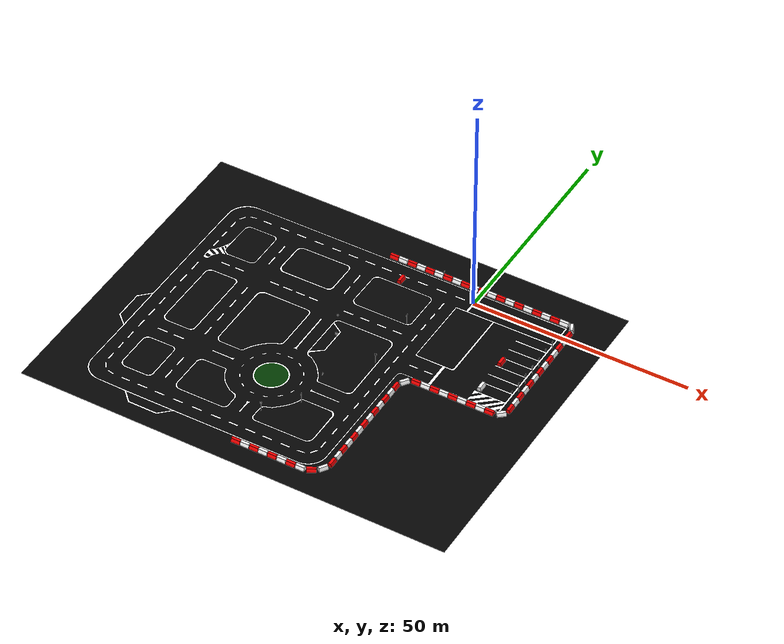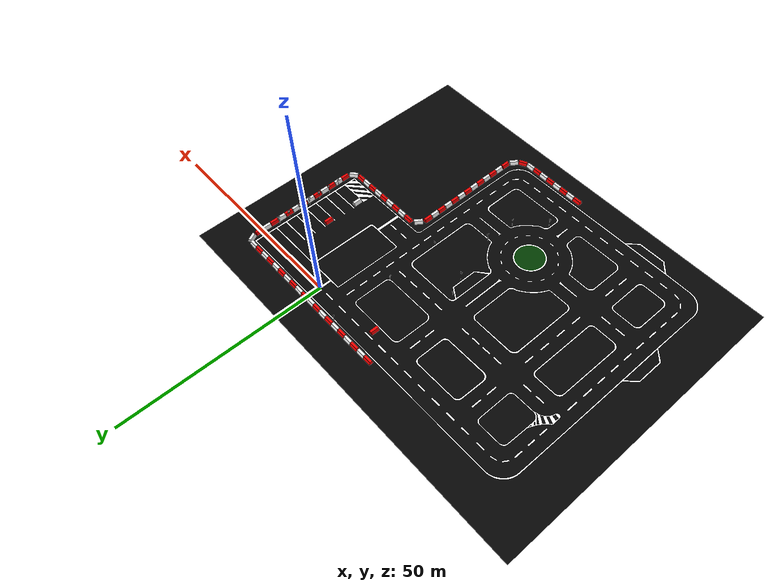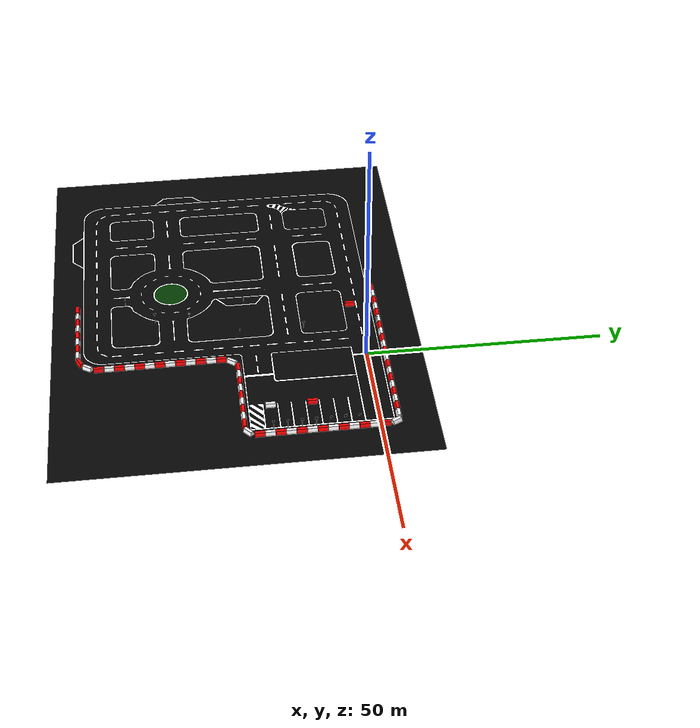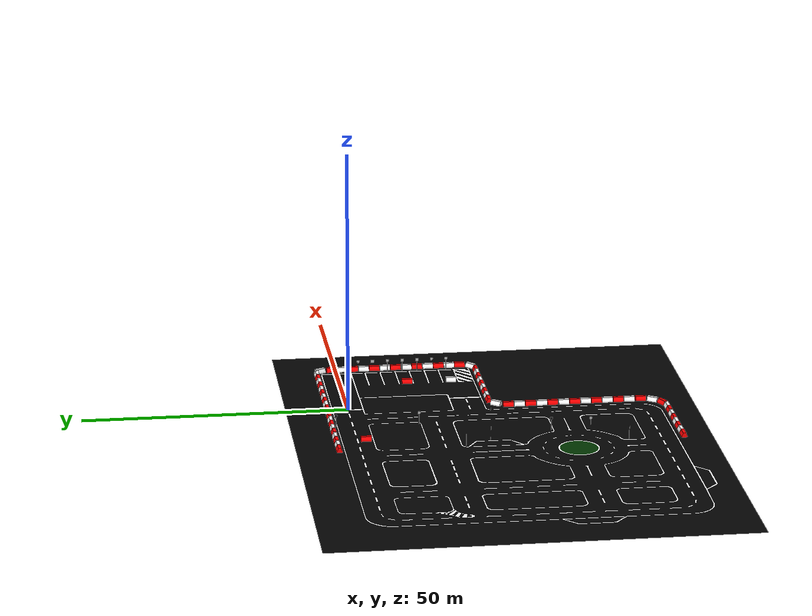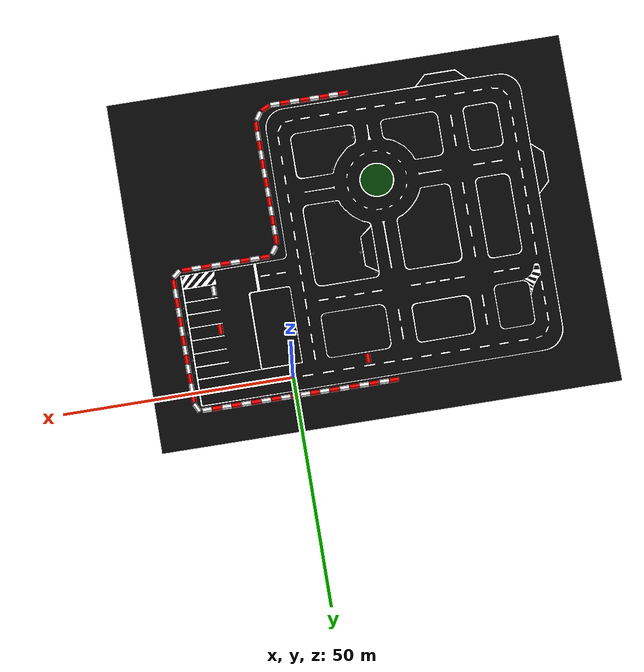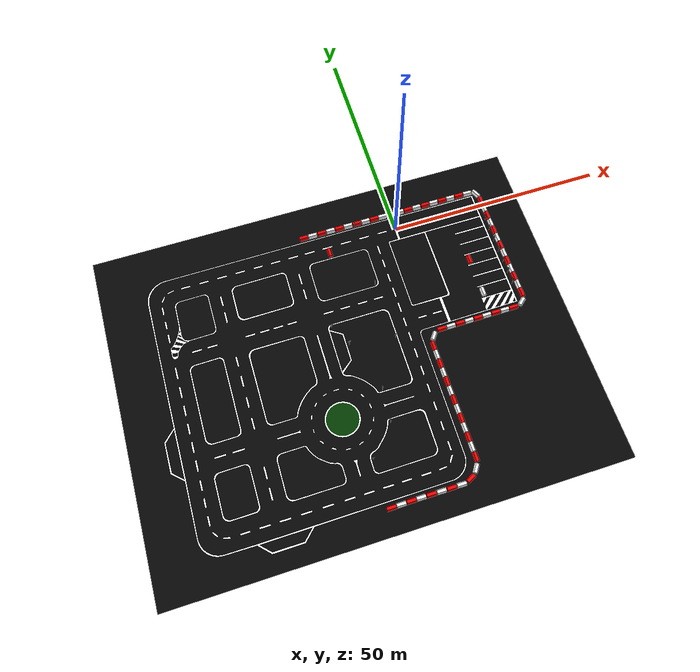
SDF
<sdf version="1.10">
 <world name="default">
  <model name="TeknofestHaritav2">
   <static>true</static>
   <link name="link">
    <collision name="collision">
     <geometry>
      <mesh><uri>package://simulation_2025/models/teknofest_zemin/meshes/teknofestharitav2.dae</uri></mesh>
     </geometry>
    </collision>
    <visual name="visual">
     <geometry>
      <mesh><uri>package://simulation_2025/models/teknofest_zemin/meshes/teknofestharitav2.dae</uri></mesh>
     </geometry>
    </visual>
    <inertial>
     <mass>1</mass>
     <inertia><ixx>1</ixx><ixy>0</ixy><ixz>0</ixz><iyy>1</iyy><iyz>0</iyz><izz>1</izz></inertia>
    </inertial>
   </link>
  </model>
  <include>
   <uri>package://simulation_2025/models/durak_levha</uri>
   <name>DurakLevha_1</name>
   <pose>-18.789400000000001 -24.401399999999999 0 0 0 -1.4925999999999997</pose>
  </include>
  <include>
   <uri>package://simulation_2025/models/donel_kavsak_levha</uri>
   <name>DonelKavsak</name>
   <pose>-21.371700000000001 -49.805399999999999 0 0 0 -1.6406000000000001</pose>
  </include>
  <include>
   <uri>package://simulation_2025/models/donel_kavsak_levha</uri>
   <name>DonelKavsak_2</name>
   <pose>-14.947100000000001 -36.276699999999998 0 0 0 -0.017246000000000001</pose>
  </include>
  <include>
   <uri>package://simulation_2025/models/kirmizi_bariyer</uri>
   <name>KirmiziBariyer</name>
   <pose>0.10786999999999999 3.4992700000000001 0 0 0 -1.5717000000000001</pose>
  </include>
  <include>
   <uri>package://simulation_2025/models/beyaz_bariyer</uri>
   <name>BeyazBariyer</name>
   <pose>-2 3.5049600000000001 0 0 0 -1.5805400000000001</pose>
  </include>
  <include>
   <uri>package://simulation_2025/models/kirmizi_bariyer</uri>
   <name>KirmiziBariyer_1</name>
   <pose>-4.0795599999999999 3.5112199999999998 0 0 0 -1.5717000000000001</pose>
  </include>
  <include>
   <uri>package://simulation_2025/models/beyaz_bariyer</uri>
   <name>BeyazBariyer_1</name>
   <pose>-6.1809900000000004 3.5314399999999999 0 0 0 -1.5805400000000001</pose>
  </include>
  <include>
   <uri>package://simulation_2025/models/kirmizi_bariyer</uri>
   <name>KirmiziBariyer_1_1</name>
   <pose>-8.3466199999999997 3.5272800000000002 0 0 0 -1.5717000000000001</pose>
  </include>
  <include>
   <uri>package://simulation_2025/models/beyaz_bariyer</uri>
   <name>BeyazBariyer_1_1</name>
   <pose>-10.517799999999999 3.5630500000000001 0 0 0 -1.5805400000000001</pose>
  </include>
  <include>
   <uri>package://simulation_2025/models/kirmizi_bariyer</uri>
   <name>KirmiziBariyer_1_1_1</name>
   <pose>-12.643800000000001 3.5325600000000001 0 0 0 -1.5717000000000001</pose>
  </include>
  <include>
   <uri>package://simulation_2025/models/beyaz_bariyer</uri>
   <name>BeyazBariyer_1_1_1</name>
   <pose>-14.7996 3.5680100000000001 0 0 0 -1.5805400000000001</pose>
  </include>
  <include>
   <uri>package://simulation_2025/models/kirmizi_bariyer</uri>
   <name>KirmiziBariyer_1_1_1_1</name>
   <pose>-16.9375 3.56867 0 0 0 -1.5717000000000001</pose>
  </include>
  <include>
   <uri>package://simulation_2025/models/beyaz_bariyer</uri>
   <name>BeyazBariyer_1_1_1_1</name>
   <pose>-19.1816 3.5583399999999998 0 0 0 -1.5805400000000001</pose>
  </include>
  <include>
   <uri>package://simulation_2025/models/kirmizi_bariyer</uri>
   <name>KirmiziBariyer_1_1_1_1_1</name>
   <pose>-21.318999999999999 3.5587900000000001 0 0 0 -1.5717000000000001</pose>
  </include>
  <include>
   <uri>package://simulation_2025/models/kirmizi_bariyer</uri>
   <name>KirmiziBariyer_1_1_1_1_1_1_1_1_1_1_1_2_1_2_1_1_1_1</name>
   <pose>-20.813199999999998 -60.499400000000001 0 0 0 -1.5717000000000001</pose>
  </include>
  <include>
   <uri>package://simulation_2025/models/beyaz_bariyer</uri>
   <name>BeyazBariyer_1_1_1_1_1_1_1_1_1_2_2_1_1_1_1_1</name>
   <pose>-18.6935 -60.4634 0 0 0 -1.5805400000000001</pose>
  </include>
  <include>
   <uri>package://simulation_2025/models/kirmizi_bariyer</uri>
   <name>KirmiziBariyer_1_1_1_1_1_1_1_1_1_1_1_2_1_2_1_1_1_1_1</name>
   <pose>-16.568300000000001 -60.430900000000001 0 0 0 -1.5717000000000001</pose>
  </include>
  <include>
   <uri>package://simulation_2025/models/beyaz_bariyer</uri>
   <name>BeyazBariyer_1_1_1_1_1_1_1_1_1_2_2_1_1_1_1_1_1</name>
   <pose>-14.4695 -60.415900000000001 0 0 0 -1.5805400000000001</pose>
  </include>
  <include>
   <uri>package://simulation_2025/models/kirmizi_bariyer</uri>
   <name>KirmiziBariyer_1_1_1_1_1_1_1_1_1_1_1_2_1_2_1_1_1_1_1_1</name>
   <pose>-12.3141 -60.436900000000001 0 0 0 -1.5717000000000001</pose>
  </include>
  <include>
   <uri>package://simulation_2025/models/beyaz_bariyer</uri>
   <name>BeyazBariyer_1_1_1_1_1_1_1_1_1_2_2_1_1_1_1_1_1_1</name>
   <pose>-10.1252 -60.443800000000003 0 0 0 -1.5805400000000001</pose>
  </include>
  <include>
   <uri>package://simulation_2025/models/kirmizi_bariyer</uri>
   <name>KirmiziBariyer_1_1_1_1_1_1_1_1_1_1_1_2_1_2_1_1_1_1_1_1_1</name>
   <pose>-7.9500099999999998 -60.470700000000001 0 0 0 -1.5717000000000001</pose>
  </include>
  <include>
   <uri>package://simulation_2025/models/beyaz_bariyer</uri>
   <name>BeyazBariyer_1_1_1_1_1_1_1_1_1_2_2_1_1_1_1_1_1_1_1</name>
   <pose>-5.7749899999999998 -60.434600000000003 0 0 0 -1.5805400000000001</pose>
  </include>
  <include>
   <uri>package://simulation_2025/models/kirmizi_bariyer</uri>
   <name>KirmiziBariyer_1_1_1_1_1_1_1_1_1_1_1_2_1_2_1_1_1_1_1_1_1_1</name>
   <pose>-3.3742100000000002 -59.874499999999998 0 0 0 -1.1214</pose>
  </include>
  <include>
   <uri>package://simulation_2025/models/beyaz_bariyer</uri>
   <name>BeyazBariyer_1_1_1_1_1_1_1_1_1_2_2_1_1_1_1_1_1_1_1_1</name>
   <pose>-1.4704999999999999 -58.170999999999999 0 0 0 -0.59510800000000008</pose>
  </include>
  <include>
   <uri>package://simulation_2025/models/kirmizi_bariyer</uri>
   <name>KirmiziBariyer_1_1_1_1_1_1_1_1_1_1_1_2_1_2_1_1_1_1_1_1_1_1_1</name>
   <pose>-1.45119 -55.717100000000002 0 0 0 3.13653</pose>
  </include>
  <include>
   <uri>package://simulation_2025/models/beyaz_bariyer</uri>
   <name>BeyazBariyer_1_1_1_1_1_1_1_1_1_2_2_1_1_1_1_1_1_1_1_1_1</name>
   <pose>-1.4720200000000001 -53.499699999999997 0 0 0 -3.1318600000000001</pose>
  </include>
  <include>
   <uri>package://simulation_2025/models/kirmizi_bariyer</uri>
   <name>KirmiziBariyer_1_1_1_1_1_1_1_1_1_1_1_2_1_2_1_1_1_1_1_1_1_1_1_1</name>
   <pose>-1.4819199999999999 -51.407899999999998 0 0 0 3.13653</pose>
  </include>
  <include>
   <uri>package://simulation_2025/models/beyaz_bariyer</uri>
   <name>BeyazBariyer_1_1_1_1_1_1_1_1_1_2_2_1_1_1_1_1_1_1_1_1_1_1</name>
   <pose>-1.4877499999999999 -49.296799999999998 0 0 0 -3.1318600000000001</pose>
  </include>
  <include>
   <uri>package://simulation_2025/models/kirmizi_bariyer</uri>
   <name>KirmiziBariyer_1_1_1_1_1_1_1_1_1_1_1_2_1_2_1_1_1_1_1_1_1_1_1_1_1</name>
   <pose>-1.48664 -47.209600000000002 0 0 0 3.13653</pose>
  </include>
  <include>
   <uri>package://simulation_2025/models/beyaz_bariyer</uri>
   <name>BeyazBariyer_1_1_1_1_1_1_1_1_1_2_2_1_1_1_1_1_1_1_1_1_1_1_1</name>
   <pose>-1.5121500000000001 -45.147799999999997 0 0 0 -3.1318600000000001</pose>
  </include>
  <include>
   <uri>package://simulation_2025/models/kirmizi_bariyer</uri>
   <name>KirmiziBariyer_1_1_1_1_1_1_1_1_1_1_1_2_1_2_1_1_1_1_1_1_1_1_1_1_1_1</name>
   <pose>-1.5617399999999999 -43.053400000000003 0 0 0 3.13653</pose>
  </include>
  <include>
   <uri>package://simulation_2025/models/beyaz_bariyer</uri>
   <name>BeyazBariyer_1_1_1_1_1_1_1_1_1_2_2_1_1_1_1_1_1_1_1_1_1_1_1_1</name>
   <pose>-1.58304 -40.938499999999998 0 0 0 -3.1318600000000001</pose>
  </include>
  <include>
   <uri>package://simulation_2025/models/kirmizi_bariyer</uri>
   <name>KirmiziBariyer_1_1_1_1_1_1_1_1_1_1_1_2_1_2_1_1_1_1_1_1_1_1_1_1_1_1_1</name>
   <pose>-1.5887899999999999 -38.805 0 0 0 3.13653</pose>
  </include>
  <include>
   <uri>package://simulation_2025/models/beyaz_bariyer</uri>
   <name>BeyazBariyer_1_1_1_1_1_1_1_1_1_2_2_1_1_1_1_1_1_1_1_1_1_1_1_1_1</name>
   <pose>-1.61084 -36.713500000000003 0 0 0 -3.1318600000000001</pose>
  </include>
  <include>
   <uri>package://simulation_2025/models/kirmizi_bariyer</uri>
   <name>KirmiziBariyer_1_1_1_1_1_1_1_1_1_1_1_2_1_2_1_1_1_1_1_1_1_1_1_1_1_1_1_1</name>
   <pose>-1.6187400000000001 -34.591900000000003 0 0 0 3.13653</pose>
  </include>
  <include>
   <uri>package://simulation_2025/models/beyaz_bariyer</uri>
   <name>BeyazBariyer_1_1_1_1_1_1_1_1_1_2_2_1_1_1_1_1_1_1_1_1_1_1_1_1_1_1</name>
   <pose>-1.63273 -32.450699999999998 0 0 0 -3.1318600000000001</pose>
  </include>
  <include>
   <uri>package://simulation_2025/models/kirmizi_bariyer</uri>
   <name>KirmiziBariyer_1_1_1_1_1_1_1_1_1_1_1_2_1_2_1_1_1_1_1_1_1_1_1_1_1_1_1_1_1</name>
   <pose>-1.6433 -30.3216 0 0 0 3.13653</pose>
  </include>
  <include>
   <uri>package://simulation_2025/models/beyaz_bariyer</uri>
   <name>BeyazBariyer_1_1_1_1_1_1_1_1_1_2_2_1_1_1_1_1_1_1_1_1_1_1_1_1_1_1_1</name>
   <pose>-0.72283200000000003 -27.896999999999998 0 0 0 2.5071099999999999</pose>
  </include>
  <include>
   <uri>package://simulation_2025/models/kirmizi_bariyer</uri>
   <name>KirmiziBariyer_1_1_1_1_1_1_1_1_1_1_1_2_1_2_1_1_1_1_1_1_1_1_1_1_1_1_1_1_1_1</name>
   <pose>1.7949600000000001 -27.428100000000001 0 0 0 -1.5735699999999999</pose>
  </include>
  <include>
   <uri>package://simulation_2025/models/beyaz_bariyer</uri>
   <name>BeyazBariyer_1_1_1_1_1_1_1_1_1_2_2_1_1_1_1_1_1_1_1_1_1_1_1_1_1_1_2</name>
   <pose>3.99708 -27.414300000000001 0 0 0 -1.5725500000000001</pose>
  </include>
  <include>
   <uri>package://simulation_2025/models/kirmizi_bariyer</uri>
   <name>KirmiziBariyer_1_1_1_1_1_1_1_1_1_1_1_2_1_2_1_1_1_1_1_1_1_1_1_1_1_1_1_1_1_1_1</name>
   <pose>6.1503100000000002 -27.408200000000001 0 0 0 -1.5735699999999999</pose>
  </include>
  <include>
   <uri>package://simulation_2025/models/beyaz_bariyer</uri>
   <name>BeyazBariyer_1_1_1_1_1_1_1_1_1_2_2_1_1_1_1_1_1_1_1_1_1_1_1_1_1_1_2_1</name>
   <pose>8.2904999999999998 -27.399899999999999 0 0 0 -1.5725500000000001</pose>
  </include>
  <include>
   <uri>package://simulation_2025/models/kirmizi_bariyer</uri>
   <name>KirmiziBariyer_1_1_1_1_1_1_1_1_1_1_1_2_1_2_1_1_1_1_1_1_1_1_1_1_1_1_1_1_1_1_1_1</name>
   <pose>10.421900000000001 -27.417300000000001 0 0 0 -1.5735699999999999</pose>
  </include>
  <include>
   <uri>package://simulation_2025/models/beyaz_bariyer</uri>
   <name>BeyazBariyer_1_1_1_1_1_1_1_1_1_2_2_1_1_1_1_1_1_1_1_1_1_1_1_1_1_1_2_1_1</name>
   <pose>12.502599999999999 -27.401299999999999 0 0 0 -1.5725500000000001</pose>
  </include>
  <include>
   <uri>package://simulation_2025/models/kirmizi_bariyer</uri>
   <name>KirmiziBariyer_1_1_1_1_1_1_1_1_1_1_1_2_1_2_1_1_1_1_1_1_1_1_1_1_1_1_1_1_1_1_1_1_1</name>
   <pose>14.66 -27.4086 0 0 0 -1.5735699999999999</pose>
  </include>
  <include>
   <uri>package://simulation_2025/models/beyaz_bariyer</uri>
   <name>BeyazBariyer_1_1_1_1_1_1_1_1_1_2_2_1_1_1_1_1_1_1_1_1_1_1_1_1_1_1_2_1_1_1</name>
   <pose>16.793800000000001 -27.420999999999999 0 0 0 -1.5725500000000001</pose>
  </include>
  <include>
   <uri>package://simulation_2025/models/kirmizi_bariyer</uri>
   <name>KirmiziBariyer_1_1_1_1_1_1_1_1_1_1_1_2_1_2_1_1_1_1_1_1_1_1_1_1_1_1_1_1_1_1_1_1_1_1</name>
   <pose>18.8934 -27.4269 0 0 0 -1.5735699999999999</pose>
  </include>
  <include>
   <uri>package://simulation_2025/models/beyaz_bariyer</uri>
   <name>BeyazBariyer_1_1_1_1_1_1_1_1_1_2_2_1_1_1_1_1_1_1_1_1_1_1_1_1_1_1_2_1_1_1_1</name>
   <pose>21.475899999999999 -26.694600000000001 0 0 0 -0.87125900000000001</pose>
  </include>
  <include>
   <uri>package://simulation_2025/models/kirmizi_bariyer</uri>
   <name>KirmiziBariyer_1_1_1_1_1_1_1_1_1_1_1_2_1_2_1_1_1_1_1_1_1_1_1_1_1_1_1_1_1_1_1_1_1_1_1</name>
   <pose>22.4893 -24.2059 0 0 0 0.0091700000000000028</pose>
  </include>
  <include>
   <uri>package://simulation_2025/models/beyaz_bariyer</uri>
   <name>BeyazBariyer_1_1_1_1_1_1_1_1_1_2_2_1_1_1_1_1_1_1_1_1_1_1_1_1_1_1_2_1_1_1_1_1</name>
   <pose>21.633500000000002 -22.143000000000001 0 0 0 -3.1317699999999999</pose>
  </include>
  <include>
   <uri>package://simulation_2025/models/kirmizi_bariyer</uri>
   <name>KirmiziBariyer_1_1_1_1_1_1_1_1_1_1_1_2_1_2_1_1_1_1_1_1_1_1_1_1_1_1_1_1_1_1_1_1_1_1_1_1</name>
   <pose>22.447199999999999 -20.040700000000001 0 0 0 0.0091700000000000028</pose>
  </include>
  <include>
   <uri>package://simulation_2025/models/beyaz_bariyer</uri>
   <name>BeyazBariyer_1_1_1_1_1_1_1_1_1_2_2_1_1_1_1_1_1_1_1_1_1_1_1_1_1_1_2_1_1_1_1_1_1</name>
   <pose>21.600300000000001 -17.9619 0 0 0 -3.1317699999999999</pose>
  </include>
  <include>
   <uri>package://simulation_2025/models/kirmizi_bariyer</uri>
   <name>KirmiziBariyer_1_1_1_1_1_1_1_1_1_1_1_2_1_2_1_1_1_1_1_1_1_1_1_1_1_1_1_1_1_1_1_1_1_1_1_1_1</name>
   <pose>22.410900000000002 -15.851599999999999 0 0 0 0.0091700000000000028</pose>
  </include>
  <include>
   <uri>package://simulation_2025/models/beyaz_bariyer</uri>
   <name>BeyazBariyer_1_1_1_1_1_1_1_1_1_2_2_1_1_1_1_1_1_1_1_1_1_1_1_1_1_1_2_1_1_1_1_1_1_1</name>
   <pose>21.564 -13.787100000000001 0 0 0 -3.1317699999999999</pose>
  </include>
  <include>
   <uri>package://simulation_2025/models/kirmizi_bariyer</uri>
   <name>KirmiziBariyer_1_1_1_1_1_1_1_1_1_1_1_2_1_2_1_1_1_1_1_1_1_1_1_1_1_1_1_1_1_1_1_1_1_1_1_1_1_1</name>
   <pose>22.403400000000001 -11.6785 0 0 0 0.0091700000000000028</pose>
  </include>
  <include>
   <uri>package://simulation_2025/models/beyaz_bariyer</uri>
   <name>BeyazBariyer_1_1_1_1_1_1_1_1_1_2_2_1_1_1_1_1_1_1_1_1_1_1_1_1_1_1_2_1_1_1_1_1_1_1_1</name>
   <pose>21.542300000000001 -9.5936500000000002 0 0 0 -3.1317699999999999</pose>
  </include>
  <include>
   <uri>package://simulation_2025/models/kirmizi_bariyer</uri>
   <name>KirmiziBariyer_1_1_1_1_1_1_1_1_1_1_1_2_1_2_1_1_1_1_1_1_1_1_1_1_1_1_1_1_1_1_1_1_1_1_1_1_1_1_1</name>
   <pose>22.3809 -7.5225900000000001 0 0 0 0.0091700000000000028</pose>
  </include>
  <include>
   <uri>package://simulation_2025/models/beyaz_bariyer</uri>
   <name>BeyazBariyer_1_1_1_1_1_1_1_1_1_2_2_1_1_1_1_1_1_1_1_1_1_1_1_1_1_1_2_1_1_1_1_1_1_1_1_1</name>
   <pose>21.5228 -5.4576700000000002 0 0 0 -3.1317699999999999</pose>
  </include>
  <include>
   <uri>package://simulation_2025/models/kirmizi_bariyer</uri>
   <name>KirmiziBariyer_1_1_1_1_1_1_1_1_1_1_1_2_1_2_1_1_1_1_1_1_1_1_1_1_1_1_1_1_1_1_1_1_1_1_1_1_1_1_1_1</name>
   <pose>22.3249 -3.3372000000000002 0 0 0 0.0091700000000000028</pose>
  </include>
  <include>
   <uri>package://simulation_2025/models/beyaz_bariyer</uri>
   <name>BeyazBariyer_1_1_1_1_1_1_1_1_1_2_2_1_1_1_1_1_1_1_1_1_1_1_1_1_1_1_2_1_1_1_1_1_1_1_1_1_1</name>
   <pose>21.468900000000001 -1.2568699999999999 0 0 0 -3.1317699999999999</pose>
  </include>
  <include>
   <uri>package://simulation_2025/models/kirmizi_bariyer</uri>
   <name>KirmiziBariyer_1_1_1_1_1_1_1_1_1_1_1_2_1_2_1_1_1_1_1_1_1_1_1_1_1_1_1_1_1_1_1_1_1_1_1_1_1_1_1_1_1</name>
   <pose>22.273399999999999 0.82996000000000003 0 0 0 0.0091700000000000028</pose>
  </include>
  <include>
   <uri>package://simulation_2025/models/beyaz_bariyer</uri>
   <name>BeyazBariyer_1_1_1_1_1_1_1_1_1_2_2_1_1_1_1_1_1_1_1_1_1_1_1_1_1_1_2_1_1_1_1_1_1_1_1_1_1_1</name>
   <pose>21.0425 2.9360200000000001 0 0 0 -2.6704300000000001</pose>
  </include>
  <include>
   <uri>package://simulation_2025/models/beyaz_bariyer</uri>
   <name>BeyazBariyer_2</name>
   <pose>2.2466599999999999 3.4881600000000001 0 0 0 -1.5805400000000001</pose>
  </include>
  <include>
   <uri>package://simulation_2025/models/kirmizi_bariyer</uri>
   <name>KirmiziBariyer_2</name>
   <pose>4.3765799999999997 3.4682499999999998 0 0 0 -1.5717000000000001</pose>
  </include>
  <include>
   <uri>package://simulation_2025/models/beyaz_bariyer</uri>
   <name>BeyazBariyer_2_1</name>
   <pose>6.5125299999999999 3.4748700000000001 0 0 0 -1.5805400000000001</pose>
  </include>
  <include>
   <uri>package://simulation_2025/models/kirmizi_bariyer</uri>
   <name>KirmiziBariyer_2_1</name>
   <pose>8.6795600000000004 3.4567299999999999 0 0 0 -1.5717000000000001</pose>
  </include>
  <include>
   <uri>package://simulation_2025/models/beyaz_bariyer</uri>
   <name>BeyazBariyer_2_1_1</name>
   <pose>10.825799999999999 3.4565899999999998 0 0 0 -1.5805400000000001</pose>
  </include>
  <include>
   <uri>package://simulation_2025/models/kirmizi_bariyer</uri>
   <name>KirmiziBariyer_2_1_1</name>
   <pose>12.9758 3.4375800000000001 0 0 0 -1.5717000000000001</pose>
  </include>
  <include>
   <uri>package://simulation_2025/models/beyaz_bariyer</uri>
   <name>BeyazBariyer_2_1_1_1</name>
   <pose>15.0641 3.4507099999999999 0 0 0 -1.5805400000000001</pose>
  </include>
  <include>
   <uri>package://simulation_2025/models/kirmizi_bariyer</uri>
   <name>KirmiziBariyer_2_1_1_1</name>
   <pose>17.198899999999998 3.4337300000000002 0 0 0 -1.5717000000000001</pose>
  </include>
  <include>
   <uri>package://simulation_2025/models/beyaz_bariyer</uri>
   <name>BeyazBariyer_2_1_1_1_1</name>
   <pose>19.366199999999999 3.4293200000000001 0 0 0 -1.5805400000000001</pose>
  </include>
  <model name="girisi_olmayan_yol_levha_0">
   <link name="link">
    <visual name="visual">
     <geometry>
      <mesh>
       <uri>package://simulation_2025/models/girisi_olmayan_yol_levha/meshes/girisi_olmayan_yol_levha.dae</uri>
      </mesh>
     </geometry>
    </visual>
    <collision name="collision">
     <geometry>
      <mesh>
       <uri>package://simulation_2025/models/girisi_olmayan_yol_levha/meshes/girisi_olmayan_yol_levha.dae</uri>
      </mesh>
     </geometry>
    </collision>
    <inertial>
     <mass>1</mass>
     <inertia><ixx>1</ixx><ixy>0</ixy><ixz>0</ixz><iyy>1</iyy><iyz>0</iyz><izz>1</izz></inertia>
    </inertial>
   </link>
   <pose>-15.636899948120117 -43.564701080322259 0 0 0 -3.0636807259253565</pose>
   <static>true</static>
  </model>
  <model name="ileri_veya_saga_mecburi_levha_0">
   <link name="link">
    <visual name="visual">
     <geometry>
      <mesh>
       <uri>package://simulation_2025/models/ileri_veya_saga_mecburi_levha/meshes/ileri_veya_saga_mecburi_levha.dae</uri>
      </mesh>
     </geometry>
    </visual>
    <collision name="collision">
     <geometry>
      <mesh>
       <uri>package://simulation_2025/models/ileri_veya_saga_mecburi_levha/meshes/ileri_veya_saga_mecburi_levha.dae</uri>
      </mesh>
     </geometry>
    </collision>
    <inertial>
     <mass>1</mass>
     <inertia><ixx>1</ixx><ixy>0</ixy><ixz>0</ixz><iyy>1</iyy><iyz>0</iyz><izz>1</izz></inertia>
    </inertial>
   </link>
   <pose>-21.386100769042965 -19.508499145507812 0 0 0 -1.6711397505057446</pose>
   <static>true</static>
  </model>
  <model name="sol_mecburi_levha_0">
   <link name="link">
    <visual name="visual">
     <geometry>
      <mesh><uri>package://simulation_2025/models/sol_mecburi_levha/meshes/sol_mecburi_levha.dae</uri></mesh>
     </geometry>
    </visual>
    <collision name="collision">
     <geometry>
      <mesh><uri>package://simulation_2025/models/sol_mecburi_levha/meshes/sol_mecburi_levha.dae</uri></mesh>
     </geometry>
    </collision>
    <inertial>
     <mass>1</mass>
     <inertia><ixx>1</ixx><ixy>0</ixy><ixz>0</ixz><iyy>1</iyy><iyz>0</iyz><izz>1</izz></inertia>
    </inertial>
   </link>
   <pose>-8.5670900344848633 -25.812200546264648 0 0 0 1.5244087510775408</pose>
   <static>true</static>
  </model>
  <model name="sola_donulmez_levha_3">
   <link name="link">
    <visual name="visual">
     <geometry>
      <mesh><uri>package://simulation_2025/models/sola_donulmez_levha/meshes/sola_donulmez_levha.dae</uri></mesh>
     </geometry>
    </visual>
    <collision name="collision">
     <geometry>
      <mesh><uri>package://simulation_2025/models/sola_donulmez_levha/meshes/sola_donulmez_levha.dae</uri></mesh>
     </geometry>
    </collision>
    <inertial>
     <mass>1</mass>
     <inertia><ixx>1</ixx><ixy>0</ixy><ixz>0</ixz><iyy>1</iyy><iyz>0</iyz><izz>1</izz></inertia>
    </inertial>
   </link>
   <pose>-9.0715599060058612 -12.298100471496584 0 0 0 3.1108664293704189</pose>
   <static>true</static>
  </model>
  <model name="ileri_mecburi_levha_0">
   <link name="link">
    <visual name="visual">
     <geometry>
      <mesh><uri>package://simulation_2025/models/ileri_mecburi_levha/meshes/ileri_mecburi_levha.dae</uri></mesh>
     </geometry>
    </visual>
    <collision name="collision">
     <geometry>
      <mesh><uri>package://simulation_2025/models/ileri_mecburi_levha/meshes/ileri_mecburi_levha.dae</uri></mesh>
     </geometry>
    </collision>
    <inertial>
     <mass>1</mass>
     <inertia><ixx>1</ixx><ixy>0</ixy><ixz>0</ixz><iyy>1</iyy><iyz>0</iyz><izz>1</izz></inertia>
    </inertial>
   </link>
   <pose>-9.038760140930453 3.2746238677036801 0 0 0 0</pose>
   <static>true</static>
  </model>
  <model name="red">
   <link name="link">
    <visual name="visual">
     <geometry><mesh><uri>package://simulation_2025/models/kirmizi_bariyer/meshes/red.dae</uri></mesh></geometry>
    </visual>
    <collision name="collision">
     <geometry><mesh><uri>package://simulation_2025/models/kirmizi_bariyer/meshes/red.dae</uri></mesh></geometry>
    </collision>
    <inertial>
     <mass>1</mass>
     <inertia><ixx>1</ixx><ixy>0</ixy><ixz>0</ixz><iyy>1</iyy><iyz>0</iyz><izz>1</izz></inertia>
    </inertial>
   </link>
   <pose>-16.170900344848633 -1.5230525732040405 0 0 0 0</pose>
   <static>true</static>
  </model>
  <model name="park_levha">
   <link name="link">
    <visual name="visual">
     <geometry><mesh><uri>package://simulation_2025/models/park_levha/meshes/park_levha.dae</uri></mesh></geometry>
    </visual>
    <collision name="collision">
     <geometry><mesh><uri>package://simulation_2025/models/park_levha/meshes/park_levha.dae</uri></mesh></geometry>
    </collision>
    <inertial>
     <mass>1</mass>
     <inertia><ixx>1</ixx><ixy>0</ixy><ixz>0</ixz><iyy>1</iyy><iyz>0</iyz><izz>1</izz></inertia>
    </inertial>
   </link>
   <pose>20.823799133300781 -15.716300010681154 0 0 0 3.1254041389935794</pose>
   <static>true</static>
  </model>
  <model name="park_yasak2_levha">
   <link name="link">
    <visual name="visual">
     <geometry>
      <mesh><uri>package://simulation_2025/models/park_yasak2_levha/meshes/park_yasak2_levha.dae</uri></mesh>
     </geometry>
    </visual>
    <collision name="collision">
     <geometry>
      <mesh><uri>package://simulation_2025/models/park_yasak2_levha/meshes/park_yasak2_levha.dae</uri></mesh>
     </geometry>
    </collision>
    <inertial>
     <mass>1</mass>
     <inertia><ixx>1</ixx><ixy>0</ixy><ixz>0</ixz><iyy>1</iyy><iyz>0</iyz><izz>1</izz></inertia>
    </inertial>
   </link>
   <pose>20.831100463867188 -18.559000015258789 0 0 0 3.1400835768335371</pose>
   <static>true</static>
  </model>
  <model name="park_yasak2_levha_0">
   <link name="link">
    <visual name="visual">
     <geometry>
      <mesh><uri>package://simulation_2025/models/park_yasak2_levha/meshes/park_yasak2_levha.dae</uri></mesh>
     </geometry>
    </visual>
    <collision name="collision">
     <geometry>
      <mesh><uri>package://simulation_2025/models/park_yasak2_levha/meshes/park_yasak2_levha.dae</uri></mesh>
     </geometry>
    </collision>
    <inertial>
     <mass>1</mass>
     <inertia><ixx>1</ixx><ixy>0</ixy><ixz>0</ixz><iyy>1</iyy><iyz>0</iyz><izz>1</izz></inertia>
    </inertial>
   </link>
   <pose>20.823299407958984 -21.392400741577152 0 0 0 -3.1318354900967758</pose>
   <static>true</static>
  </model>
  <model name="white_1">
   <link name="link">
    <visual name="visual">
     <geometry><mesh><uri>package://simulation_2025/models/beyaz_bariyer/meshes/white.dae</uri></mesh></geometry>
    </visual>
    <collision name="collision">
     <geometry><mesh><uri>package://simulation_2025/models/beyaz_bariyer/meshes/white.dae</uri></mesh></geometry>
    </collision>
    <inertial>
     <mass>1</mass>
     <inertia><ixx>1</ixx><ixy>0</ixy><ixz>0</ixz><iyy>1</iyy><iyz>0</iyz><izz>1</izz></inertia>
    </inertial>
   </link>
   <pose>14.239418282013144 -21.404094941445692 0 0 0 0</pose>
   <static>true</static>
  </model>
  <model name="park_levha_0">
   <link name="link">
    <visual name="visual">
     <geometry><mesh><uri>package://simulation_2025/models/park_levha/meshes/park_levha.dae</uri></mesh></geometry>
    </visual>
    <collision name="collision">
     <geometry><mesh><uri>package://simulation_2025/models/park_levha/meshes/park_levha.dae</uri></mesh></geometry>
    </collision>
    <inertial>
     <mass>1</mass>
     <inertia><ixx>1</ixx><ixy>0</ixy><ixz>0</ixz><iyy>1</iyy><iyz>0</iyz><izz>1</izz></inertia>
    </inertial>
   </link>
   <pose>20.838699340820312 -12.852999687194824 0 0 0 -3.1196839398767122</pose>
   <static>true</static>
  </model>
  <model name="park_yasak2_levha_1">
   <link name="link">
    <visual name="visual">
     <geometry>
      <mesh><uri>package://simulation_2025/models/park_yasak2_levha/meshes/park_yasak2_levha.dae</uri></mesh>
     </geometry>
    </visual>
    <collision name="collision">
     <geometry>
      <mesh><uri>package://simulation_2025/models/park_yasak2_levha/meshes/park_yasak2_levha.dae</uri></mesh>
     </geometry>
    </collision>
    <inertial>
     <mass>1</mass>
     <inertia><ixx>1</ixx><ixy>0</ixy><ixz>0</ixz><iyy>1</iyy><iyz>0</iyz><izz>1</izz></inertia>
    </inertial>
   </link>
   <pose>20.828399658203125 -9.9496002197265625 0 0 0 3.1409669828600042</pose>
   <static>true</static>
  </model>
  <model name="park_levha_1">
   <link name="link">
    <visual name="visual">
     <geometry><mesh><uri>package://simulation_2025/models/park_levha/meshes/park_levha.dae</uri></mesh></geometry>
    </visual>
    <collision name="collision">
     <geometry><mesh><uri>package://simulation_2025/models/park_levha/meshes/park_levha.dae</uri></mesh></geometry>
    </collision>
    <inertial>
     <mass>1</mass>
     <inertia><ixx>1</ixx><ixy>0</ixy><ixz>0</ixz><iyy>1</iyy><iyz>0</iyz><izz>1</izz></inertia>
    </inertial>
   </link>
   <pose>20.759700775146484 -6.9992899894714391 0 0 0 -3.1272888847304863</pose>
   <static>true</static>
  </model>
  <model name="park_yasak2_levha_2">
   <link name="link">
    <visual name="visual">
     <geometry>
      <mesh><uri>package://simulation_2025/models/park_yasak2_levha/meshes/park_yasak2_levha.dae</uri></mesh>
     </geometry>
    </visual>
    <collision name="collision">
     <geometry>
      <mesh><uri>package://simulation_2025/models/park_yasak2_levha/meshes/park_yasak2_levha.dae</uri></mesh>
     </geometry>
    </collision>
    <inertial>
     <mass>1</mass>
     <inertia><ixx>1</ixx><ixy>0</ixy><ixz>0</ixz><iyy>1</iyy><iyz>0</iyz><izz>1</izz></inertia>
    </inertial>
   </link>
   <pose>20.811399459838867 -4.2369298934936523 0 0 0 -3.1204939919269425</pose>
   <static>true</static>
  </model>
  <model name="red_1">
   <link name="link">
    <visual name="visual">
     <geometry><mesh><uri>package://simulation_2025/models/kirmizi_bariyer/meshes/red.dae</uri></mesh></geometry>
    </visual>
    <collision name="collision">
     <geometry><mesh><uri>package://simulation_2025/models/kirmizi_bariyer/meshes/red.dae</uri></mesh></geometry>
    </collision>
    <inertial>
     <mass>1</mass>
     <inertia><ixx>1</ixx><ixy>0</ixy><ixz>0</ixz><iyy>1</iyy><iyz>0</iyz><izz>1</izz></inertia>
    </inertial>
   </link>
   <pose>14.182736161597918 -12.905916203354 0 0 0 0</pose>
   <static>true</static>
  </model>
 </world>
</sdf>
